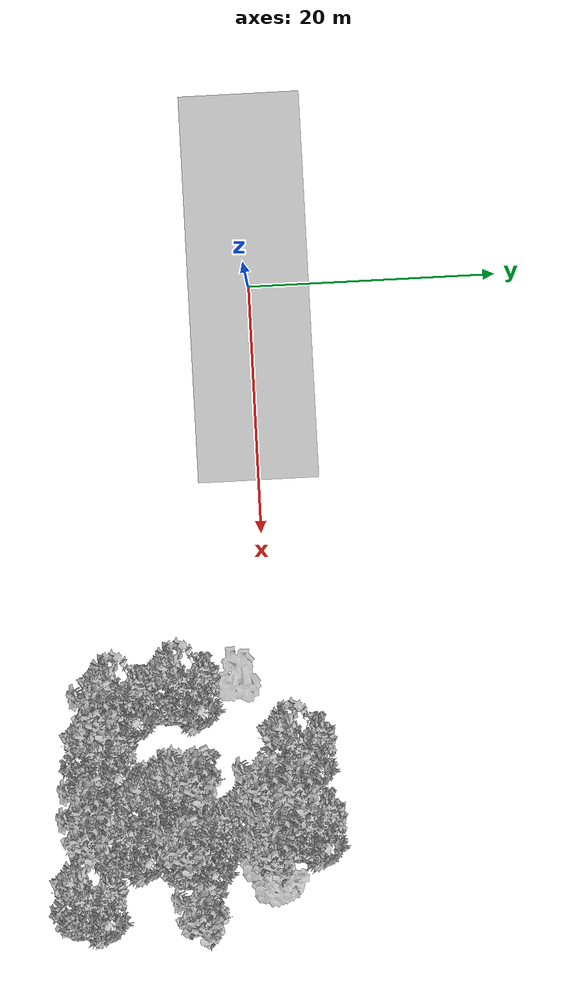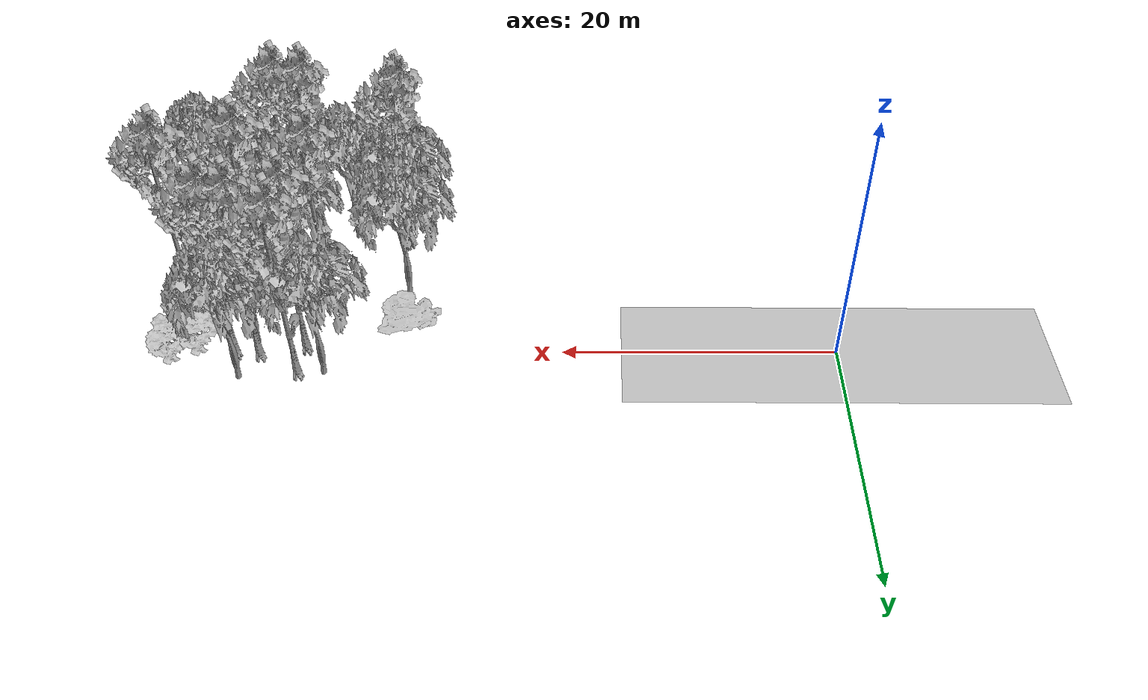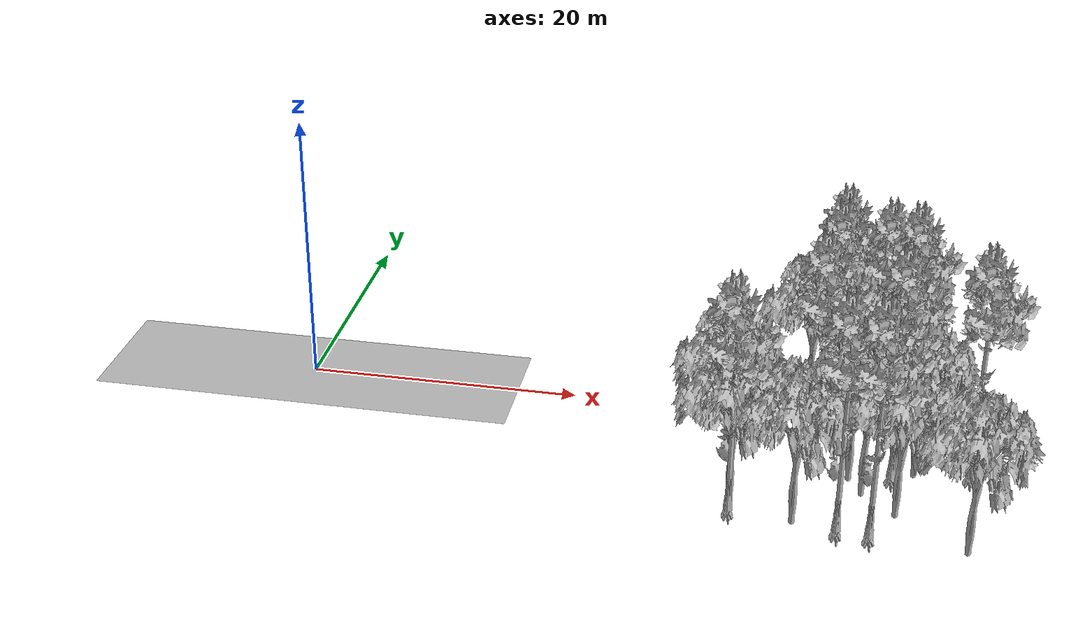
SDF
<sdf version="1.7">
 <world name="default">
  <model name="ground_plane">
   <static>1</static>
   <link name="link">
    <collision name="collision">
     <pose>-50 0 0 0 -0 0</pose>
     <geometry><plane><normal>0 0 1</normal><size>100 100</size></plane></geometry>
     <surface><contact><ode><min_depth>0.01</min_depth><max_vel>0</max_vel></ode></contact></surface>
    </collision>
    <visual name="grass">
     <cast_shadows>0</cast_shadows>
     <geometry>
      <mesh>
       <scale>0.5814285714285714 0.18142857142857144 0.1</scale>
       <uri>file://grass_plane/meshes/grass_plane.dae</uri>
      </mesh>
     </geometry>
    </visual>
   </link>
  </model>
  <model name="Tree 9">
   <static>1</static>
   <pose>43.24993066943506 -5.576055386693405 0 1.57079 -0 0</pose>
   <link name="link">
    <collision name="collision">
     <geometry><mesh><scale>3.5 5 3.5</scale><uri>model://tree_2/meshes/tree_2.obj</uri></mesh></geometry>
    </collision>
    <visual name="visual">
     <geometry><mesh><scale>3.5 5 3.5</scale><uri>model://tree_2/meshes/tree_2.obj</uri></mesh></geometry>
    </visual>
   </link>
  </model>
  <model name="Tree 23">
   <static>1</static>
   <pose>31.78843503341058 -6.538116669138439 0 1.57079 -0 0</pose>
   <link name="link">
    <collision name="collision">
     <geometry><mesh><scale>3.5 5 3.5</scale><uri>model://tree_2/meshes/tree_2.obj</uri></mesh></geometry>
    </collision>
    <visual name="visual">
     <geometry><mesh><scale>3.5 5 3.5</scale><uri>model://tree_2/meshes/tree_2.obj</uri></mesh></geometry>
    </visual>
   </link>
  </model>
  <model name="Tree 47">
   <static>1</static>
   <pose>41.85661095444867 -14.033017614137888 0 1.57079 -0 0</pose>
   <link name="link">
    <collision name="collision">
     <geometry><mesh><scale>3.5 5 3.5</scale><uri>model://tree_9/meshes/tree_9.obj</uri></mesh></geometry>
    </collision>
    <visual name="visual">
     <geometry><mesh><scale>3.5 5 3.5</scale><uri>model://tree_9/meshes/tree_9.obj</uri></mesh></geometry>
    </visual>
   </link>
  </model>
  <model name="Tree 72">
   <static>1</static>
   <pose>43.10988054961213 -6.688378975577939 0 1.57079 -0 0</pose>
   <link name="link">
    <collision name="collision">
     <geometry><mesh><scale>3.5 5 3.5</scale><uri>model://tree_9/meshes/tree_9.obj</uri></mesh></geometry>
    </collision>
    <visual name="visual">
     <geometry><mesh><scale>3.5 5 3.5</scale><uri>model://tree_9/meshes/tree_9.obj</uri></mesh></geometry>
    </visual>
   </link>
  </model>
  <model name="Tree 83">
   <static>1</static>
   <pose>36.725668205328574 -13.238163543499311 0 1.57079 -0 0</pose>
   <link name="link">
    <collision name="collision">
     <geometry><mesh><scale>3.5 5 3.5</scale><uri>model://tree_2/meshes/tree_2.obj</uri></mesh></geometry>
    </collision>
    <visual name="visual">
     <geometry><mesh><scale>3.5 5 3.5</scale><uri>model://tree_2/meshes/tree_2.obj</uri></mesh></geometry>
    </visual>
   </link>
  </model>
  <model name="Tree 86">
   <static>1</static>
   <pose>36.91299996346265 2.18167758323321 0 1.57079 -0 0</pose>
   <link name="link">
    <collision name="collision">
     <geometry><mesh><scale>3.5 5 3.5</scale><uri>model://tree_2/meshes/tree_2.obj</uri></mesh></geometry>
    </collision>
    <visual name="visual">
     <geometry><mesh><scale>3.5 5 3.5</scale><uri>model://tree_2/meshes/tree_2.obj</uri></mesh></geometry>
    </visual>
   </link>
  </model>
  <model name="Tree 93">
   <static>1</static>
   <pose>38.75601762012252 -0.43405114977865544 0 1.57079 -0 0</pose>
   <link name="link">
    <collision name="collision">
     <geometry><mesh><scale>3.5 5 3.5</scale><uri>model://tree_9/meshes/tree_9.obj</uri></mesh></geometry>
    </collision>
    <visual name="visual">
     <geometry><mesh><scale>3.5 5 3.5</scale><uri>model://tree_9/meshes/tree_9.obj</uri></mesh></geometry>
    </visual>
   </link>
  </model>
  <model name="Tree 94">
   <static>1</static>
   <pose>32.4743963889655 -11.638551022658454 0 1.57079 -0 0</pose>
   <link name="link">
    <collision name="collision">
     <geometry><mesh><scale>3.5 5 3.5</scale><uri>model://tree_2/meshes/tree_2.obj</uri></mesh></geometry>
    </collision>
    <visual name="visual">
     <geometry><mesh><scale>3.5 5 3.5</scale><uri>model://tree_2/meshes/tree_2.obj</uri></mesh></geometry>
    </visual>
   </link>
  </model>
  <model name="Tree 110">
   <static>1</static>
   <pose>39.722865862390194 -13.807783102920915 0 1.57079 -0 0</pose>
   <link name="link">
    <collision name="collision">
     <geometry><mesh><scale>3.5 5 3.5</scale><uri>model://tree_9/meshes/tree_9.obj</uri></mesh></geometry>
    </collision>
    <visual name="visual">
     <geometry><mesh><scale>3.5 5 3.5</scale><uri>model://tree_9/meshes/tree_9.obj</uri></mesh></geometry>
    </visual>
   </link>
  </model>
  <model name="Tree 112">
   <static>1</static>
   <pose>42.02842041854511 0.2939057919578545 0 1.57079 -0 0</pose>
   <link name="link">
    <collision name="collision">
     <geometry><mesh><scale>3.5 5 3.5</scale><uri>model://tree_9/meshes/tree_9.obj</uri></mesh></geometry>
    </collision>
    <visual name="visual">
     <geometry><mesh><scale>3.5 5 3.5</scale><uri>model://tree_9/meshes/tree_9.obj</uri></mesh></geometry>
    </visual>
   </link>
  </model>
  <model name="Tree 137">
   <static>1</static>
   <pose>40.16800773900964 -7.382523453870978 0 1.57079 -0 0</pose>
   <link name="link">
    <collision name="collision">
     <geometry><mesh><scale>3.5 5 3.5</scale><uri>model://tree_2/meshes/tree_2.obj</uri></mesh></geometry>
    </collision>
    <visual name="visual">
     <geometry><mesh><scale>3.5 5 3.5</scale><uri>model://tree_2/meshes/tree_2.obj</uri></mesh></geometry>
    </visual>
   </link>
  </model>
  <model name="Tree 150">
   <static>1</static>
   <pose>42.921551956239554 2.6749470573341405 0 1.57079 -0 0</pose>
   <link name="link">
    <collision name="collision">
     <geometry><mesh><scale>3.5 5 3.5</scale><uri>model://tree_2/meshes/tree_2.obj</uri></mesh></geometry>
    </collision>
    <visual name="visual">
     <geometry><mesh><scale>3.5 5 3.5</scale><uri>model://tree_2/meshes/tree_2.obj</uri></mesh></geometry>
    </visual>
   </link>
  </model>
  <model name="Tree 154">
   <static>1</static>
   <pose>43.385123763207304 -11.203474286326138 0 1.57079 -0 0</pose>
   <link name="link">
    <collision name="collision">
     <geometry><mesh><scale>3.5 5 3.5</scale><uri>model://tree_2/meshes/tree_2.obj</uri></mesh></geometry>
    </collision>
    <visual name="visual">
     <geometry><mesh><scale>3.5 5 3.5</scale><uri>model://tree_2/meshes/tree_2.obj</uri></mesh></geometry>
    </visual>
   </link>
  </model>
  <model name="Tree 172">
   <static>1</static>
   <pose>46.447968657401944 -1.007455440924323 0 1.57079 -0 0</pose>
   <link name="link">
    <collision name="collision">
     <geometry><mesh><scale>4 2.5 4</scale><uri>model://tree_1/meshes/tree_1.obj</uri></mesh></geometry>
    </collision>
    <visual name="visual">
     <geometry><mesh><scale>4 2.5 4</scale><uri>model://tree_1/meshes/tree_1.obj</uri></mesh></geometry>
    </visual>
   </link>
  </model>
  <model name="Tree 175">
   <static>1</static>
   <pose>41.09186978818427 -9.061817017630894 0 1.57079 -0 0</pose>
   <link name="link">
    <collision name="collision">
     <geometry><mesh><scale>3.5 5 3.5</scale><uri>model://tree_2/meshes/tree_2.obj</uri></mesh></geometry>
    </collision>
    <visual name="visual">
     <geometry><mesh><scale>3.5 5 3.5</scale><uri>model://tree_2/meshes/tree_2.obj</uri></mesh></geometry>
    </visual>
   </link>
  </model>
  <model name="Tree 177">
   <static>1</static>
   <pose>43.83573527685485 0.08459564152570564 0 1.57079 -0 0</pose>
   <link name="link">
    <collision name="collision">
     <geometry><mesh><scale>3.5 5 3.5</scale><uri>model://tree_9/meshes/tree_9.obj</uri></mesh></geometry>
    </collision>
    <visual name="visual">
     <geometry><mesh><scale>3.5 5 3.5</scale><uri>model://tree_9/meshes/tree_9.obj</uri></mesh></geometry>
    </visual>
   </link>
  </model>
  <model name="Tree 185">
   <static>1</static>
   <pose>38.95075963585492 2.143370279912272 0 1.57079 -0 0</pose>
   <link name="link">
    <collision name="collision">
     <geometry><mesh><scale>3.5 5 3.5</scale><uri>model://tree_9/meshes/tree_9.obj</uri></mesh></geometry>
    </collision>
    <visual name="visual">
     <geometry><mesh><scale>3.5 5 3.5</scale><uri>model://tree_9/meshes/tree_9.obj</uri></mesh></geometry>
    </visual>
   </link>
  </model>
  <model name="Tree 193">
   <static>1</static>
   <pose>48.03618115297877 -14.587160117882615 0 1.57079 -0 0</pose>
   <link name="link">
    <collision name="collision">
     <geometry><mesh><scale>3.5 5 3.5</scale><uri>model://tree_2/meshes/tree_2.obj</uri></mesh></geometry>
    </collision>
    <visual name="visual">
     <geometry><mesh><scale>3.5 5 3.5</scale><uri>model://tree_2/meshes/tree_2.obj</uri></mesh></geometry>
    </visual>
   </link>
  </model>
  <model name="Tree 194">
   <static>1</static>
   <pose>44.549414834255714 -6.100755388690967 0 1.57079 -0 0</pose>
   <link name="link">
    <collision name="collision">
     <geometry><mesh><scale>3.5 5 3.5</scale><uri>model://tree_2/meshes/tree_2.obj</uri></mesh></geometry>
    </collision>
    <visual name="visual">
     <geometry><mesh><scale>3.5 5 3.5</scale><uri>model://tree_2/meshes/tree_2.obj</uri></mesh></geometry>
    </visual>
   </link>
  </model>
  <model name="Tree 203">
   <static>1</static>
   <pose>31.43748930262035 -2.763162422835631 0 1.57079 -0 0</pose>
   <link name="link">
    <collision name="collision">
     <geometry><mesh><scale>3 2 3</scale><uri>model://tree_3/meshes/tree_3.obj</uri></mesh></geometry>
    </collision>
    <visual name="visual">
     <geometry><mesh><scale>3 2 3</scale><uri>model://tree_3/meshes/tree_3.obj</uri></mesh></geometry>
    </visual>
   </link>
  </model>
  <model name="Tree 210">
   <static>1</static>
   <pose>48.41137553134746 -5.56523341687296 0 1.57079 -0 0</pose>
   <link name="link">
    <collision name="collision">
     <geometry><mesh><scale>3.5 5 3.5</scale><uri>model://tree_9/meshes/tree_9.obj</uri></mesh></geometry>
    </collision>
    <visual name="visual">
     <geometry><mesh><scale>3.5 5 3.5</scale><uri>model://tree_9/meshes/tree_9.obj</uri></mesh></geometry>
    </visual>
   </link>
  </model>
  <model name="Tree 239">
   <static>1</static>
   <pose>32.56348416181521 -12.734331049459206 0 1.57079 -0 0</pose>
   <link name="link">
    <collision name="collision">
     <geometry><mesh><scale>3.5 5 3.5</scale><uri>model://tree_9/meshes/tree_9.obj</uri></mesh></geometry>
    </collision>
    <visual name="visual">
     <geometry><mesh><scale>3.5 5 3.5</scale><uri>model://tree_9/meshes/tree_9.obj</uri></mesh></geometry>
    </visual>
   </link>
  </model>
  <model name="Tree 249">
   <static>1</static>
   <pose>42.291679672206314 -0.9010371938155917 0 1.57079 -0 0</pose>
   <link name="link">
    <collision name="collision">
     <geometry><mesh><scale>3.5 5 3.5</scale><uri>model://tree_2/meshes/tree_2.obj</uri></mesh></geometry>
    </collision>
    <visual name="visual">
     <geometry><mesh><scale>3.5 5 3.5</scale><uri>model://tree_2/meshes/tree_2.obj</uri></mesh></geometry>
    </visual>
   </link>
  </model>
  <model name="Tree 260">
   <static>1</static>
   <pose>37.87930158337156 -5.606706764994016 0 1.57079 -0 0</pose>
   <link name="link">
    <collision name="collision">
     <geometry><mesh><scale>3.5 5 3.5</scale><uri>model://tree_9/meshes/tree_9.obj</uri></mesh></geometry>
    </collision>
    <visual name="visual">
     <geometry><mesh><scale>3.5 5 3.5</scale><uri>model://tree_9/meshes/tree_9.obj</uri></mesh></geometry>
    </visual>
   </link>
  </model>
  <model name="Tree 285">
   <static>1</static>
   <pose>48.22318425842303 -0.11421621000548399 0 1.57079 -0 0</pose>
   <link name="link">
    <collision name="collision">
     <geometry><mesh><scale>4 2.5 4</scale><uri>model://tree_1/meshes/tree_1.obj</uri></mesh></geometry>
    </collision>
    <visual name="visual">
     <geometry><mesh><scale>4 2.5 4</scale><uri>model://tree_1/meshes/tree_1.obj</uri></mesh></geometry>
    </visual>
   </link>
  </model>
 </world>
</sdf>
